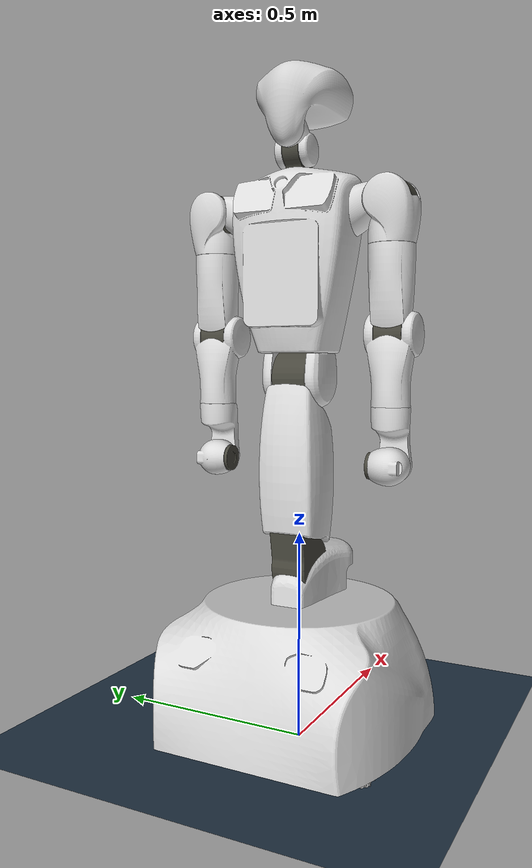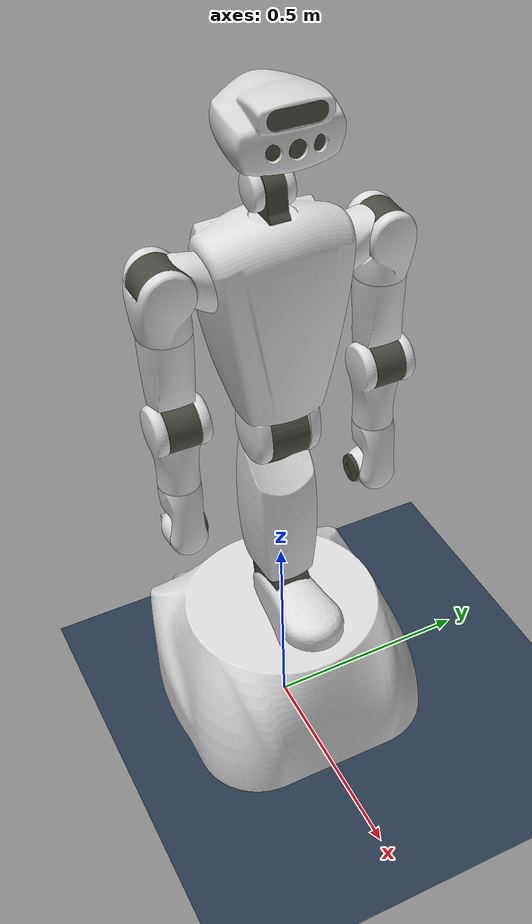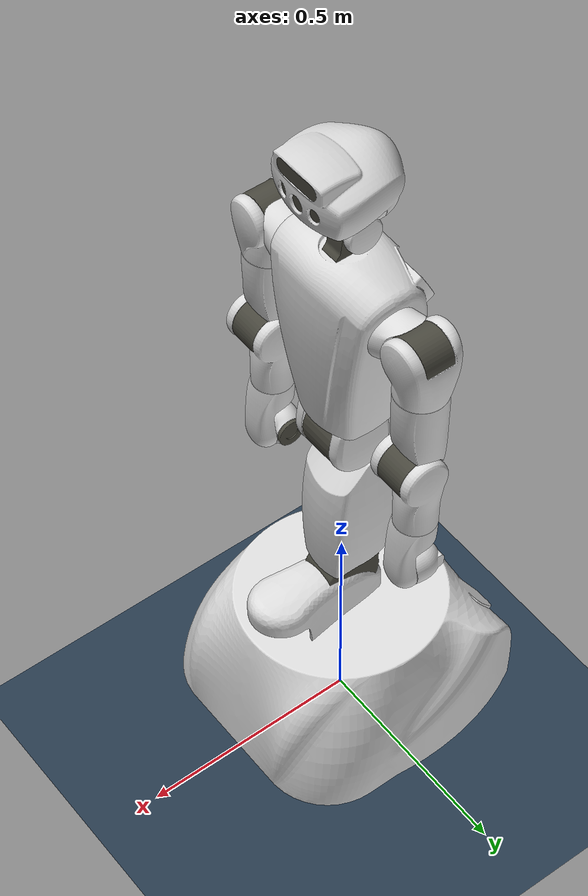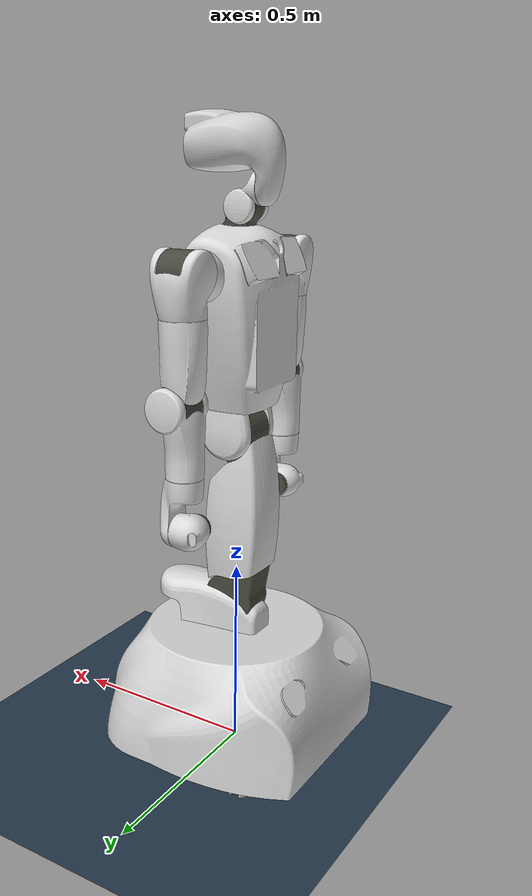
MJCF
<mujoco model="torobo2_standard">
  <compiler angle="radian" meshdir="meshes" autolimits="true"/>
  <option timestep='0.001' integrator="implicitfast"/>
  <statistic meansize="0.169328" extent="2.00894" center="-0.00792332 4.8352e-07 0.725047"/>
  <default>
    <default class="torobo2">
      <joint armature="0.1" stiffness="0" damping="0"/>
      <default class="visual">
        <geom type="mesh" contype="0" conaffinity="0" group="2" density="0"/>
      </default>
      <default class="collision">
        <geom type="mesh" contype="1" conaffinity="1" group="3" rgba="1 1 1 1"/>
      </default>
    </default>
  </default>
  <asset>
    <texture name="texplane" type="2d" builtin="checker" rgb1=".2 .3 .4" rgb2=".1 0.15 0.2"
          width="512" height="512" mark="cross" markrgb=".8 .8 .8"/>
    <material name="matplane" reflectance="0." texture="texplane" texrepeat="1 1" texuniform="true"/>

    <material name="219,219,219" specular="0.8588239999999999" shininess="1.0" rgba="0.858824 0.858824 0.858824 1.000000"/>
    <material name="210,210,210" specular="1.0" shininess="0.2" rgba="0.823529 0.823529 0.823529 1.000000"/>
    <material name="72,71,61" specular="0.26666666666666666" shininess="1.0" rgba="0.282353 0.278431 0.239216 1.000000"/>
    <material name="192,192,192" specular="1.0" shininess="0.2" rgba="0.752941 0.752941 0.752941 1.000000"/>
    <material name="190,188,186" specular="1.0" shininess="0.2" rgba="0.745098 0.737255 0.729412 1.000000"/>

    <!-- visual meshes -->
    <mesh name="base_link" file="visual/base_link.obj"/>
    <mesh name="right_wheel_link_0" file="visual/right_wheel_link_0.obj"/>
    <mesh name="right_wheel_link_1" file="visual/right_wheel_link_1.obj"/>
    <mesh name="left_wheel_link_0" file="visual/left_wheel_link_0.obj"/>
    <mesh name="left_wheel_link_1" file="visual/left_wheel_link_1.obj"/>
    <mesh name="torso_link0" file="visual/torso_link0.obj"/>
    <mesh name="torso_link1_0" file="visual/torso_link1_0.obj"/>
    <mesh name="torso_link1_1" file="visual/torso_link1_1.obj"/>
    <mesh name="torso_link2" file="visual/torso_link2.obj"/>
    <mesh name="torso_link3" file="visual/torso_link3.obj"/>
    <mesh name="head_link1" file="visual/head_link1.obj"/>
    <mesh name="head_link2" file="visual/head_link2.obj"/>
    <mesh name="head_link3_0" file="visual/head_link3_0.obj"/>
    <mesh name="head_link3_1" file="visual/head_link3_1.obj"/>
    <mesh name="left_arm_link0" file="visual/left_arm_link0.obj"/>
    <mesh name="left_arm_link1_0" file="visual/left_arm_link1_0.obj"/>
    <mesh name="left_arm_link1_1" file="visual/left_arm_link1_1.obj"/>
    <mesh name="left_arm_link2" file="visual/left_arm_link2.obj"/>
    <mesh name="left_arm_link3_0" file="visual/left_arm_link3_0.obj"/>
    <mesh name="left_arm_link3_1" file="visual/left_arm_link3_1.obj"/>
    <mesh name="left_arm_link4" file="visual/left_arm_link4.obj"/>
    <mesh name="left_arm_link5" file="visual/left_arm_link5.obj"/>
    <mesh name="left_arm_link6" file="visual/left_arm_link6.obj"/>
    <mesh name="left_arm_link7" file="visual/left_arm_link7.obj"/>
    <mesh name="right_arm_link0" file="visual/right_arm_link0.obj"/>
    <mesh name="right_arm_link1_0" file="visual/right_arm_link1_0.obj"/>
    <mesh name="right_arm_link1_1" file="visual/right_arm_link1_1.obj"/>
    <mesh name="right_arm_link2" file="visual/right_arm_link2.obj"/>
    <mesh name="right_arm_link3_0" file="visual/right_arm_link3_0.obj"/>
    <mesh name="right_arm_link3_1" file="visual/right_arm_link3_1.obj"/>
    <mesh name="right_arm_link4" file="visual/right_arm_link4.obj"/>
    <mesh name="right_arm_link5" file="visual/right_arm_link5.obj"/>
    <mesh name="right_arm_link6" file="visual/right_arm_link6.obj"/>
    <mesh name="right_arm_link7" file="visual/right_arm_link7.obj"/>

    <!-- collision meshes -->
    <mesh name="base_link_collision" file="collision/base_link.stl"/>
    <mesh name="torso_link0_collision" file="collision/torso_link0.stl"/>
    <mesh name="torso_link1_collision" file="collision/torso_link1.stl"/>
    <mesh name="torso_link2_collision" file="collision/torso_link2.stl"/>
    <mesh name="torso_link3_collision" file="collision/torso_link3.stl"/>
    <mesh name="head_link1_collision" file="collision/head_link1.stl"/>
    <mesh name="head_link2_collision" file="collision/head_link2.stl"/>
    <mesh name="head_link3_collision" file="collision/head_link3.stl"/>
    <mesh name="left_arm_link0_collision" file="collision/left_arm_link0.stl"/>
    <mesh name="left_arm_link1_collision" file="collision/left_arm_link1.stl"/>
    <mesh name="left_arm_link2_collision" file="collision/left_arm_link2.stl"/>
    <mesh name="left_arm_link3_collision" file="collision/left_arm_link3.stl"/>
    <mesh name="left_arm_link4_collision" file="collision/left_arm_link4.stl"/>
    <mesh name="left_arm_link5_collision" file="collision/left_arm_link5.stl"/>
    <mesh name="left_arm_link6_collision" file="collision/left_arm_link6.stl"/>
    <mesh name="left_arm_link7_collision" file="collision/left_arm_link7.stl"/>
    <mesh name="right_arm_link0_collision" file="collision/right_arm_link0.stl"/>
    <mesh name="right_arm_link1_collision" file="collision/right_arm_link1.stl"/>
    <mesh name="right_arm_link2_collision" file="collision/right_arm_link2.stl"/>
    <mesh name="right_arm_link3_collision" file="collision/right_arm_link3.stl"/>
    <mesh name="right_arm_link4_collision" file="collision/right_arm_link4.stl"/>
    <mesh name="right_arm_link5_collision" file="collision/right_arm_link5.stl"/>
    <mesh name="right_arm_link6_collision" file="collision/right_arm_link6.stl"/>
    <mesh name="right_arm_link7_collision" file="collision/right_arm_link7.stl"/>
  </asset>
  <worldbody>
    <light directional="true" diffuse=".4 .4 .4" specular="0.1 0.1 0.1" pos="0 0 5.0" dir="0 0 -1" castshadow="false"/>
    <light directional="true" diffuse=".6 .6 .6" specular="0.2 0.2 0.2" pos="0 0 4" dir="0 0 -1" castshadow="false"/>
    <geom name="ground" type="plane" size="0 0 1" pos="0.001 0 0" quat="1 0 0 0" material="matplane" condim="1" conaffinity='15'/>

    <body name="base_link_trans_x" pos="0 0 0">
      <inertial pos="0 0 0" mass="0.00001" diaginertia="0.00001 0.00001 0.00001"/>
      <joint name="base_joint_trans_x" type="slide" axis="1 0 0" range="-10000 10000"/>
      <body name="base_link_trans_y" pos="0 0 0">
        <inertial pos="0 0 0" mass="0.00001" diaginertia="0.00001 0.00001 0.00001"/>
        <joint name="base_joint_trans_y" type="slide" axis="0 1 0" range="-10000 10000"/>
        <body name="base_link_rot_yaw" pos="0 0 0">
          <inertial pos="0 0 0" mass="0.00001" diaginertia="0.00001 0.00001 0.00001"/>
          <joint name="base_joint_rot_yaw" type="hinge" axis="0 0 1" range="-10000 10000"/>
          <body name="base_link" pos="0 0 0" childclass="torobo2">
            <inertial pos="-0.0231104 0.00158473 0.188355" quat="-0.0157449 0.686078 -0.018153 0.727131" mass="56.049" diaginertia="1.87057 1.70163 1.51139"/>
            <geom class="visual" type="mesh" mesh="base_link" material="219,219,219"/>
            <geom class="collision" type="mesh" mesh="base_link_collision"/>
            <geom class="visual" pos="0 0 0.34" type="mesh" mesh="torso_link0" material="219,219,219"/>
            <geom class="collision" pos="0 0 0.34" type="mesh" mesh="torso_link0_collision"/>
            <body name="torso/link_1" pos="0 0 0.425" quat="0.5 -0.5 -0.5 -0.5">
              <inertial pos="0.213191 -0.019853 -0.001309" quat="0.00960405 0.690592 -0.00415758 0.723169" mass="11.5246" diaginertia="0.313471 0.30707 0.0289366"/>
              <joint name="torso/joint_1" pos="0 0 0" axis="0 0 1" range="-0.959931 0.610865"/>
              <geom class="visual" type="mesh" mesh="torso_link1_0" material="72,71,61"/>
              <geom class="visual" type="mesh" mesh="torso_link1_1" material="219,219,219"/>
              <geom class="collision" type="mesh" mesh="torso_link1_collision"/>
              <body name="torso/link_2" pos="0.45 0 0" quat="0.707107 0 0 0.707107">
                <inertial pos="1e-05 -0.039264 0.007875" quat="0.647558 0.762016 0.000151212 0.000100433" mass="2.8715" diaginertia="0.0121864 0.0119528 0.00777284"/>
                <joint name="torso/joint_2" pos="0 0 0" axis="0 0 1" range="-0.523599 2.18166"/>
                <geom class="visual" type="mesh" mesh="torso_link2" material="219,219,219"/>
                <geom class="collision" type="mesh" mesh="torso_link2_collision"/>
                <body name="torso/link_3" quat="0.707107 0.707107 0 0">
                  <inertial pos="-0.0127522 0.00183622 0.30238" quat="0.999869 0.00116029 0.0160629 0.00154784" mass="10.0047" diaginertia="0.166033 0.150799 0.0601367"/>
                  <joint name="torso/joint_3" pos="0 0 0" axis="0 0 1" range="-2.0944 2.0944"/>
                  <geom class="visual" type="mesh" mesh="torso_link3" material="219,219,219"/>
                  <geom class="collision" type="mesh" mesh="torso_link3_collision"/>
                  <geom class="visual" pos="0 0.03465 0.3416" quat="0.5 0.5 0.5 -0.5" type="mesh" mesh="left_arm_link0" material="219,219,219"/>
                  <geom class="collision" pos="0 0.03465 0.3416" quat="0.5 0.5 0.5 -0.5" type="mesh" mesh="left_arm_link0_collision"/>
                  <geom class="visual" pos="0 -0.03465 0.3416" quat="0.5 0.5 0.5 -0.5" type="mesh" mesh="right_arm_link0" material="219,219,219"/>
                  <geom class="collision" pos="0 -0.03465 0.3416" quat="0.5 0.5 0.5 -0.5" type="mesh" mesh="right_arm_link0_collision"/>
                  <body name="left_arm/link_1" pos="0 0.22035 0.418519" quat="0.392847 0.587938 0.587938 -0.392847">
                    <inertial pos="0.007282 -0.002236 0.061573" quat="0.706031 -0.0605284 -0.0482315 0.703939" mass="2.34532" diaginertia="0.00996609 0.00950611 0.0029046"/>
                    <joint name="left_arm/joint_1" pos="0 0 0" axis="0 0 1" range="-1.22173 4.18879"/>
                    <geom class="visual" type="mesh" mesh="left_arm_link1_0" material="72,71,61"/>
                    <geom class="visual" type="mesh" mesh="left_arm_link1_1" material="219,219,219"/>
                    <geom class="collision" type="mesh" mesh="left_arm_link1_collision"/>
                    <body name="left_arm/link_2" pos="0.02 0 0" quat="0.587938 0.587938 0.392847 -0.392847">
                      <inertial pos="0.001632 0.064705 0.003689" quat="0.740303 0.672149 -0.00176482 0.0127677" mass="1.92983" diaginertia="0.0070432 0.00669025 0.00256541"/>
                      <joint name="left_arm/joint_2" pos="0 0 0" axis="0 0 1" range="-1.91986 0"/>
                      <geom class="visual" type="mesh" mesh="left_arm_link2" material="219,219,219"/>
                      <geom class="collision" type="mesh" mesh="left_arm_link2_collision"/>
                      <body name="left_arm/link_3" pos="0 0.3 0" quat="0.5 0.5 0.5 -0.5">
                        <inertial pos="0.006987 -0.002219 0.07002" quat="0.998294 -0.0116747 -0.0549101 0.0160829" mass="2.41136" diaginertia="0.0121108 0.0120041 0.00296219"/>
                        <joint name="left_arm/joint_3" pos="0 0 0" axis="0 0 1" range="-2.0944 2.0944"/>
                        <geom class="visual" type="mesh" mesh="left_arm_link3_0" material="72,71,61"/>
                        <geom class="visual" type="mesh" mesh="left_arm_link3_1" material="219,219,219"/>
                        <geom class="collision" type="mesh" mesh="left_arm_link3_collision"/>
                        <body name="left_arm/link_4" pos="0.02 0 0" quat="0.707107 0.707107 0 0">
                          <inertial pos="-0.011045 -0.047406 0.003626" quat="0.673288 0.732855 -0.0679342 -0.0706561" mass="1.16816" diaginertia="0.0040733 0.00384647 0.001413"/>
                          <joint name="left_arm/joint_4" pos="0 0 0" axis="0 0 1" range="-0.0872665 2.35619"/>
                          <geom class="visual" type="mesh" mesh="left_arm_link4" material="219,219,219"/>
                          <geom class="collision" type="mesh" mesh="left_arm_link4_collision"/>
                          <body name="left_arm/link_5" pos="-0.02 -0.3 0" quat="0.5 -0.5 -0.5 -0.5">
                            <inertial pos="-3e-06 0.011867 0.099758" quat="0.990044 0.140741 -0.00033647 -0.00199369" mass="1.13531" diaginertia="0.00300474 0.00292652 0.000794792"/>
                            <joint name="left_arm/joint_5" pos="0 0 0" axis="0 0 1" range="-1.5708 1.5708"/>
                            <geom class="visual" type="mesh" mesh="left_arm_link5" material="219,219,219"/>
                            <geom class="collision" type="mesh" mesh="left_arm_link5_collision"/>
                            <body name="left_arm/link_6" quat="0.5 0.5 0.5 -0.5">
                              <inertial pos="1.5e-05 0.002262 -0.003468" quat="0.997384 -0.0720286 0.000853523 0.00598791" mass="0.737707" diaginertia="0.000683267 0.000624344 0.000429623"/>
                              <joint name="left_arm/joint_6" pos="0 0 0" axis="0 0 1" range="-1.5708 1.5708"/>
                              <geom class="visual" type="mesh" mesh="left_arm_link6" material="219,219,219"/>
                              <geom class="collision" type="mesh" mesh="left_arm_link6_collision"/>
                              <body name="left_arm/link_7" pos="0 0.048 0.01" quat="0.707107 0.707107 0 0">
                                <inertial pos="0.00017 2.7e-05 0.01376" quat="0.52141 0.478267 -0.520329 0.478174" mass="0.14265" diaginertia="7.31843e-05 5.09235e-05 4.92308e-05"/>
                                <joint name="left_arm/joint_7" pos="0 0 0" axis="0 0 1" range="-0.349066 1.5708"/>
                                <geom class="visual" type="mesh" mesh="left_arm_link7" material="72,71,61"/>
                                <geom class="collision" type="mesh" mesh="left_arm_link7_collision"/>
                              </body>
                            </body>
                          </body>
                        </body>
                      </body>
                    </body>
                  </body>
                  <body name="right_arm/link_1" pos="0 -0.22035 0.418519" quat="0.587938 0.392847 0.392847 -0.587938">
                    <inertial pos="0.007282 0.002236 -0.061573" quat="0.703939 0.0482315 0.0605284 0.706031" mass="2.34532" diaginertia="0.00996609 0.00950611 0.0029046"/>
                    <joint name="right_arm/joint_1" pos="0 0 0" axis="0 0 1" range="-1.22173 4.18879"/>
                    <geom class="visual" type="mesh" mesh="right_arm_link1_0" material="72,71,61"/>
                    <geom class="visual" type="mesh" mesh="right_arm_link1_1" material="219,219,219"/>
                    <geom class="collision" type="mesh" mesh="right_arm_link1_collision"/>
                    <body name="right_arm/link_2" pos="0.02 0 0" quat="0.587938 -0.587938 -0.392847 -0.392847">
                      <inertial pos="0.001632 0.064705 0.003689" quat="0.740303 0.672149 -0.00176482 0.0127677" mass="1.92983" diaginertia="0.0070432 0.00669025 0.00256541"/>
                      <joint name="right_arm/joint_2" pos="0 0 0" axis="0 0 1" range="-1.91986 0"/>
                      <geom class="visual" type="mesh" mesh="right_arm_link2"  material="219,219,219"/>
                      <geom class="collision" type="mesh" mesh="right_arm_link2_collision"/>
                      <body name="right_arm/link_3" pos="0 0.3 0" quat="0.5 -0.5 -0.5 -0.5">
                        <inertial pos="0.006987 0.002219 -0.07002" quat="0.998294 -0.0116747 0.0549101 -0.0160829" mass="2.41136" diaginertia="0.0121108 0.0120041 0.00296219"/>
                        <joint name="right_arm/joint_3" pos="0 0 0" axis="0 0 1" range="-2.0944 2.0944"/>
                        <geom class="visual" type="mesh" mesh="right_arm_link3_0"  material="72,71,61"/>
                        <geom class="visual" type="mesh" mesh="right_arm_link3_1"  material="219,219,219"/>
                        <geom class="collision" type="mesh" mesh="right_arm_link3_collision"/>
                        <body name="right_arm/link_4" pos="0.02 0 0" quat="0.707107 -0.707107 0 0">
                          <inertial pos="-0.011045 -0.047406 0.003626" quat="0.673288 0.732855 -0.0679342 -0.0706561" mass="1.16816" diaginertia="0.0040733 0.00384647 0.001413"/>
                          <joint name="right_arm/joint_4" pos="0 0 0" axis="0 0 1" range="-0.0872665 2.35619"/>
                          <geom class="visual" type="mesh" mesh="right_arm_link4"  material="219,219,219"/>
                          <geom class="collision" type="mesh" mesh="right_arm_link4_collision"/>
                          <body name="right_arm/link_5" pos="-0.02 -0.3 0" quat="0.5 0.5 0.5 -0.5">
                            <inertial pos="3e-06 0.011867 -0.099758" quat="0.990044 -0.140741 -0.00033647 0.00199369" mass="1.13531" diaginertia="0.00300474 0.00292652 0.000794792"/>
                            <joint name="right_arm/joint_5" pos="0 0 0" axis="0 0 1" range="-1.5708 1.5708"/>
                            <geom class="visual" type="mesh" mesh="right_arm_link5"  material="219,219,219"/>
                            <geom class="collision" type="mesh" mesh="right_arm_link5_collision"/>
                            <body name="right_arm/link_6" quat="0.5 -0.5 -0.5 -0.5">
                              <inertial pos="1.5e-05 -0.002262 0.003468" quat="0.997384 -0.0720286 -0.000853523 -0.00598791" mass="0.737707" diaginertia="0.000683267 0.000624344 0.000429623"/>
                              <joint name="right_arm/joint_6" pos="0 0 0" axis="0 0 1" range="-1.5708 1.5708"/>
                              <geom class="visual" type="mesh" mesh="right_arm_link6"  material="219,219,219"/>
                              <geom class="collision" type="mesh" mesh="right_arm_link6_collision"/>
                              <body name="right_arm/link_7" pos="0 0.048 -0.01" quat="0.707107 -0.707107 0 0">
                                <inertial pos="0.00017 -2.7e-05 -0.01376" quat="0.478174 0.520329 -0.478267 0.52141" mass="0.14265" diaginertia="7.31843e-05 5.09235e-05 4.92308e-05"/>
                                <joint name="right_arm/joint_7" pos="0 0 0" axis="0 0 1" range="-0.349066 1.5708"/>
                                <geom class="visual" type="mesh" mesh="right_arm_link7"  material="72,71,61"/>
                                <geom class="collision" type="mesh" mesh="right_arm_link7_collision"/>
                              </body>
                            </body>
                          </body>
                        </body>
                      </body>
                    </body>
                  </body>
                  <body name="head/link_1" pos="0 0 0.53">
                    <inertial pos="-0.012467 -0.004271 -0.021697" quat="0.683565 -0.0689821 -0.121402 0.716409" mass="0.581793" diaginertia="0.00103142 0.000928712 0.000277733"/>
                    <joint name="head/joint_1" pos="0 0 0" axis="0 0 1" range="-2.96706 2.96706"/>
                    <geom class="visual" type="mesh" mesh="head_link1" material="72,71,61"/>
                    <geom class="collision" type="mesh" mesh="head_link1_collision"/>
                    <body name="head/link_2" pos="-0.02 0 0" quat="0.5 -0.5 -0.5 -0.5">
                      <inertial pos="0.028956 -0.032951 0.000172" quat="0.661731 0.647513 0.279151 0.25478" mass="0.321723" diaginertia="0.000479673 0.000405915 0.000249251"/>
                      <joint name="head/joint_2" pos="0 0 0" axis="0 0 1" range="-0.872665 1.0472"/>
                      <geom class="visual" type="mesh" mesh="head_link2" material="219,219,219"/>
                      <geom class="collision" type="mesh" mesh="head_link2_collision"/>
                      <body name="head/link_3" pos="0.041 0 0" quat="0.707107 -0.707107 0 0">
                        <inertial pos="0.097293 0.000224 0.034755" quat="0.981108 0.000352451 0.193328 -0.00720088" mass="1.38491" diaginertia="0.00840426 0.00768934 0.00440097"/>
                        <joint name="head/joint_3" pos="0 0 0" axis="0 0 1" range="-0.872665 0.872665"/>
                        <geom class="visual" type="mesh" mesh="head_link3_0" material="72,71,61" />
                        <geom class="visual" type="mesh" mesh="head_link3_1" material="210,210,210" />
                        <geom class="collision" type="mesh" mesh="head_link3_collision"/>
                      </body>
                    </body>
                  </body>
                </body>
              </body>
            </body>
          </body>
          <!-- wheel collision is disabled -->
          <body name="base_front_right_wheel/link" pos="0.15 -0.221475 0.07582" quat="0.707107 -0.707107 0 0">
            <inertial pos="0 0 -0.000427" quat="0.5 0.5 -0.5 0.5" mass="1.05512" diaginertia="0.00362702 0.00213355 0.00213355"/>
            <joint name="base_front_right_wheel/joint" pos="0 0 0" axis="0 0 1"/>
            <geom class="visual" type="mesh" mesh="right_wheel_link_0" material="190,188,186"/>
            <geom class="visual" type="mesh" mesh="right_wheel_link_1" material="192,192,192"/>
          </body>
          <body name="base_front_left_wheel/link" pos="0.15 0.221475 0.07582" quat="0.707107 -0.707107 0 0">
            <inertial pos="0 0 0" quat="0.5 0.5 -0.5 0.5" mass="1.05512" diaginertia="0.00362702 0.00213355 0.00213355"/>
            <joint name="base_front_left_wheel/joint" pos="0 0 0" axis="0 0 1"/>
            <geom class="visual" type="mesh" mesh="left_wheel_link_0" material="190,188,186"/>
            <geom class="visual" type="mesh" mesh="left_wheel_link_1" material="192,192,192"/>
          </body>
          <body name="base_rear_right_wheel/link" pos="-0.15 -0.221475 0.07582" quat="0.707107 -0.707107 0 0">
            <inertial pos="0 0 0" quat="0.5 0.5 -0.5 0.5" mass="1.05512" diaginertia="0.00362702 0.00213355 0.00213355"/>
            <joint name="base_rear_right_wheel/joint" pos="0 0 0" axis="0 0 1"/>
            <geom class="visual" type="mesh" mesh="left_wheel_link_0" material="190,188,186"/>
            <geom class="visual" type="mesh" mesh="left_wheel_link_1" material="192,192,192"/>
          </body>
          <body name="base_rear_left_wheel/link" pos="-0.15 0.221475 0.07582" quat="0.707107 -0.707107 0 0">
            <inertial pos="0 0 -0.000427" quat="0.5 0.5 -0.5 0.5" mass="1.05512" diaginertia="0.00362702 0.00213355 0.00213355"/>
            <joint name="base_rear_left_wheel/joint" pos="0 0 0" axis="0 0 1"/>
            <geom class="visual" type="mesh" mesh="right_wheel_link_0" material="190,188,186"/>
            <geom class="visual" type="mesh" mesh="right_wheel_link_1" material="192,192,192"/>
          </body>
        </body>
      </body>
    </body>
  </worldbody>
  <contact>
    <exclude body1="left_arm/link_1" body2="torso/link_3" />
    <exclude body1="left_arm/link_5" body2="left_arm/link_7" />
    <exclude body1="right_arm/link_1" body2="torso/link_3" />
    <exclude body1="right_arm/link_5" body2="right_arm/link_7" />
    <exclude body1="torso/link_1" body2="torso/link_3" />
    <exclude body1="head/link_1" body2="head/link_3" /> <!-- added -->
  </contact>
  <actuator>
    <velocity name="base_joint_trans_x" joint="base_joint_trans_x" ctrlrange="-10 10" kv="10000"/>
    <velocity name="base_joint_trans_y" joint="base_joint_trans_y" ctrlrange="-10 10" kv="10000"/>
    <velocity name="base_joint_rot_yaw" joint="base_joint_rot_yaw" ctrlrange="-10 10" kv="10000"/>
    <position name="torso/joint_1" joint="torso/joint_1" ctrlrange="-0.959931 0.610865" forcerange="-400 400" kp="10000" kv="1000"/>
    <position name="torso/joint_2" joint="torso/joint_2" ctrlrange="-0.523599 2.18166" forcerange="-250 250" kp="10000" kv="1000"/>
    <position name="torso/joint_3" joint="torso/joint_3" ctrlrange="-2.0944 2.0944" forcerange="-300 300" kp="10000" kv="1000"/>
    <position name="left_arm/joint_1" joint="left_arm/joint_1" ctrlrange="-1.22173 4.18879" forcerange="-135 135" kp="10000" kv="1000"/>
    <position name="left_arm/joint_2" joint="left_arm/joint_2" ctrlrange="-1.91986 0" forcerange="-75 75" kp="10000" kv="1000"/>
    <position name="left_arm/joint_3" joint="left_arm/joint_3" ctrlrange="-2.0944 2.0944" forcerange="-75 75" kp="10000" kv="1000"/>
    <position name="left_arm/joint_4" joint="left_arm/joint_4" ctrlrange="-0.0872665 2.35619" forcerange="-75 75" kp="10000" kv="1000"/>
    <position name="left_arm/joint_5" joint="left_arm/joint_5" ctrlrange="-1.5708 1.5708" forcerange="-30 30" kp="10000" kv="1000"/>
    <position name="left_arm/joint_6" joint="left_arm/joint_6" ctrlrange="-1.5708 1.5708" forcerange="-30 30" kp="10000" kv="1000"/>
    <position name="left_arm/joint_7" joint="left_arm/joint_7" ctrlrange="-0.349066 1.5708" forcerange="-30 30" kp="10000" kv="1000"/>
    <position name="right_arm/joint_1" joint="right_arm/joint_1" ctrlrange="-1.22173 4.18879" forcerange="-135 135" kp="10000" kv="1000"/>
    <position name="right_arm/joint_2" joint="right_arm/joint_2" ctrlrange="-1.91986 0" forcerange="-75 75" kp="10000" kv="1000"/>
    <position name="right_arm/joint_3" joint="right_arm/joint_3" ctrlrange="-2.0944 2.0944" forcerange="-75 75" kp="10000" kv="1000"/>
    <position name="right_arm/joint_4" joint="right_arm/joint_4" ctrlrange="-0.0872665 2.35619" forcerange="-75 75" kp="10000" kv="1000"/>
    <position name="right_arm/joint_5" joint="right_arm/joint_5" ctrlrange="-1.5708 1.5708" forcerange="-30 30" kp="10000" kv="1000"/>
    <position name="right_arm/joint_6" joint="right_arm/joint_6" ctrlrange="-1.5708 1.5708" forcerange="-30 30" kp="10000" kv="1000"/>
    <position name="right_arm/joint_7" joint="right_arm/joint_7" ctrlrange="-0.349066 1.5708" forcerange="-30 30" kp="10000" kv="1000"/>
    <position name="head/joint_1" joint="head/joint_1" ctrlrange="-2.96706 2.96706" forcerange="-6 6" kp="100" kv="10"/>
    <position name="head/joint_2" joint="head/joint_2" ctrlrange="-0.872665 1.0472" forcerange="-6 6" kp="100" kv="10"/>
    <position name="head/joint_3" joint="head/joint_3" ctrlrange="-0.872665 0.872665" forcerange="-6 6" kp="100" kv="10"/>
  </actuator>
</mujoco>
